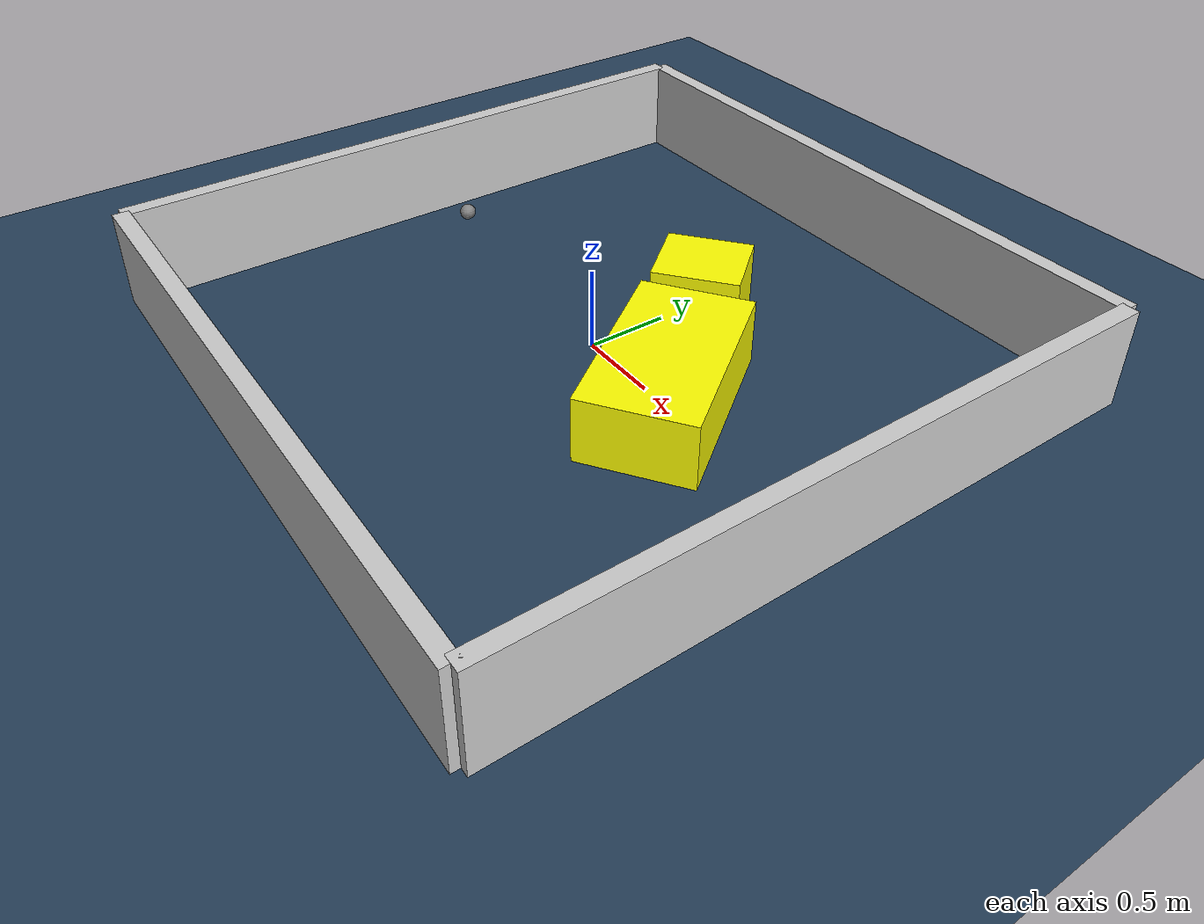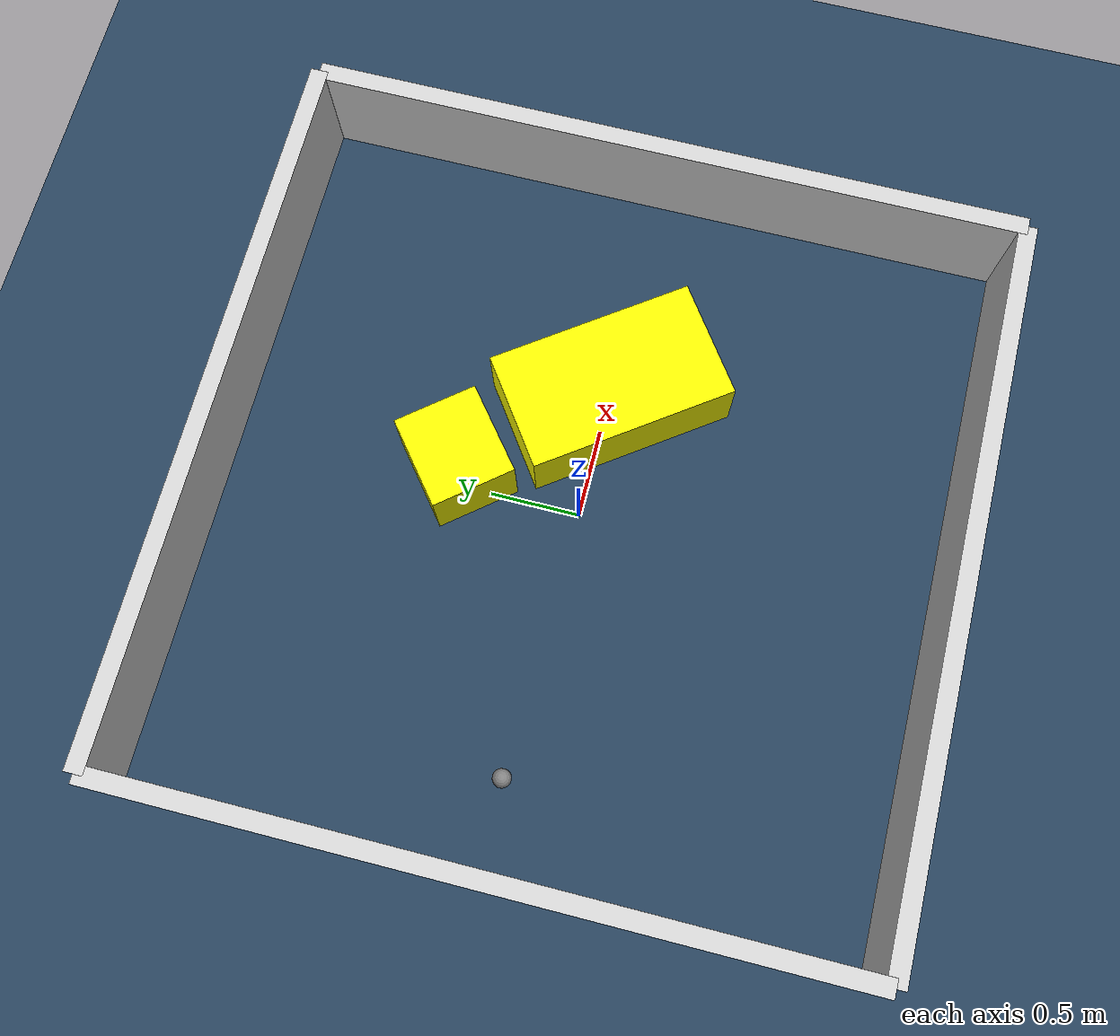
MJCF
<?xml version="1.0" ?>
<mujoco model="generated_environment">
  <option timestep="0.01" integrator="RK4" cone="elliptic"/>
  <default>
    <geom density="1"/>
  </default>
  <asset>
    <texture builtin="gradient" height="3072" rgb1="0.3 0.5 0.7" rgb2="0 0 0" type="skybox" width="512"/>
    <texture builtin="checker" height="300" mark="edge" markrgb="0.8 0.8 0.8" name="groundplane" rgb1="0.2 0.3 0.4" rgb2="0.1 0.2 0.3" type="2d" width="300"/>
    <material name="groundplane" reflectance="0.2" texrepeat="5 5" texture="groundplane" texuniform="true"/>
    <material name="robot" rgba="0.0 1.0 0.0 1"/>
  </asset>
  <worldbody>
    <light dir="0 0 -1" directional="true" pos="0 0 1.5"/>
    <geom condim="4" friction="1.0 0.005 0.001" material="groundplane" name="floor" size="0 0 0.05" type="plane"/>
    <body name="walls">
      <geom name="wall_1" condim="4" pos="-2.0 0.0 0.3" rgba="0.800000011920929 0.800000011920929 0.800000011920929 1.0" size="0.05 2.0 0.3" type="box"/>
      <geom name="wall_2" condim="4" pos="2.0 0.0 0.3" rgba="0.800000011920929 0.800000011920929 0.800000011920929 1.0" size="0.05 2.0 0.3" type="box"/>
      <geom name="wall_3" condim="4" pos="0.0 -2.0 0.3" rgba="0.800000011920929 0.800000011920929 0.800000011920929 1.0" size="2.0 0.05 0.3" type="box"/>
      <geom name="wall_4" condim="4" pos="0.0 2.0 0.3" rgba="0.800000011920929 0.800000011920929 0.800000011920929 1.0" size="2.0 0.05 0.3" type="box"/>
    </body>
    <body name="robot">
      <joint name="joint_x" type="slide" pos="0 0 0" axis="1 0 0"/>
      <joint name="joint_y" type="slide" pos="0 0 0" axis="0 1 0"/>
      <geom name="robot" type="sphere" pos="-1.4924914827581195 0.031564846512956546 0.2" size="0.05" mass="5." friction="1.0 0.005 0.0001" condim="4"/>
      <site name="sensor_ball"/>
    </body>
    <body name="obstacle_1_movable">
      <geom name="obstacle_1_movable" condim="4" pos="0.7001397222620804 -0.0056893861148334945 0.2" euler="0 0 35.58539107889646" friction="1.0 0.005 0.001" rgba="1 1 0 1" size="0.33184075129077023 0.5785083053245978 0.2" type="box" mass="0.1"/>
      <joint type="free"/>
    </body>
    <body name="obstacle_2_movable">
      <geom name="obstacle_2_movable" condim="4" pos="0.10711298526197299 0.7115062447623732 0.2" euler="0 0 39.03211945234932" friction="1.0 0.005 0.001" rgba="1 1 0 1" size="0.2607730083423252 0.23536061050422205 0.2" type="box" mass="0.1"/>
      <joint type="free"/>
    </body>
  </worldbody>
  <actuator>
    <motor name="actuator_x" joint="joint_x" gear="1" ctrlrange="-1 1"/>
    <motor name="actuator_y" joint="joint_y" gear="1" ctrlrange="-1 1"/>
  </actuator>
</mujoco>
